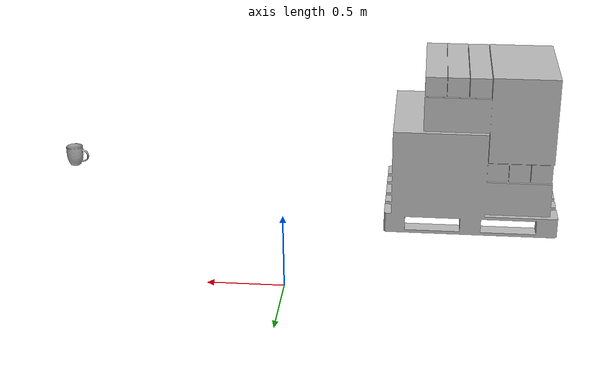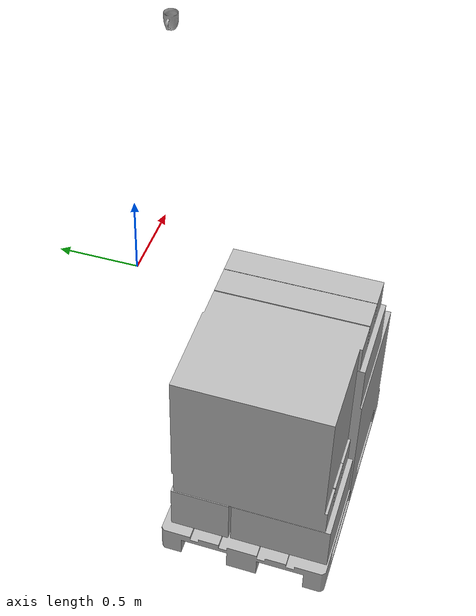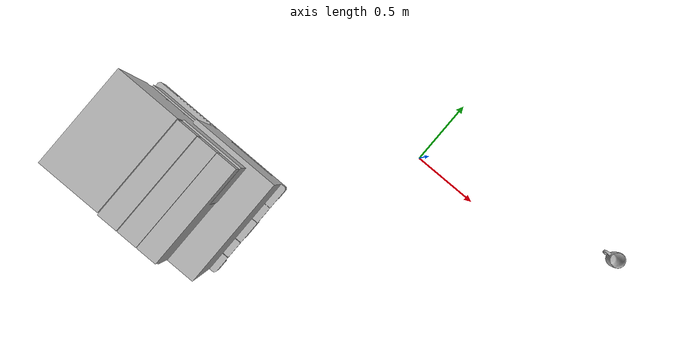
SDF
<?xml version="1.0" ?>
<sdf version="1.7">
  <world name="cell_world">
    <!-- Luz direccional tipo "sol" (sustituye a model://sun) -->
    <light name="sun" type="directional">
      <cast_shadows>true</cast_shadows>
      <pose>0 0 10 0 0 0</pose>
      <diffuse>1 1 1 1</diffuse>
      <specular>0.2 0.2 0.2 1</specular>
      <attenuation>
        <range>100</range>
        <constant>0.9</constant>
        <linear>0.01</linear>
        <quadratic>0.001</quadratic>
      </attenuation>
      <direction>-0.5 0.5 -1</direction>
    </light>

    <gravity>0 0 -9.81</gravity>

    <!-- Pallet (malla local package://) -->
    <model name="euro_pallet_stack">
      <static>true</static>
      <pose>-1.2 -1.2 0 0 0 0</pose>
      <link name="link">
        <visual name="vis">
          <geometry>
            <mesh>
              <uri>file:///root/ros2_ws/install/robot_description/share/robot_description/meshes/cc_by/euro_pallet_w_stacked_boxes/meshes/euro_pallet_w_stacked_boxes.dae</uri>
              <scale>1 1 1</scale>
            </mesh>
          </geometry>
        </visual>
        <collision name="col">
          <geometry><box><size>1.2 0.8 1.2</size></box></geometry>
          <pose>0 0 0.6 0 0 0</pose>
        </collision>
      </link>
    </model>

    <!-- Taza -->
    <model name="mug">
      <static>true</static>
      <pose>1.20 0.20 0.90 0 0 0</pose>
      <link name="link">
        <visual name="vis">
          <geometry>
            <mesh>
              <uri>file:///root/ros2_ws/install/robot_description/share/robot_description/meshes/cc_by/Threshold_Porcelain_Coffee_Mug_All_Over_Bead_White/meshes/model.obj</uri>
              <scale>1 1 1</scale>
            </mesh>
          </geometry>
        </visual>
        <collision name="col">
          <geometry><cylinder><radius>0.05</radius><length>0.30</length></cylinder></geometry>
        </collision>
      </link>
    </model>

    <!-- El robot UR se crea desde /robot_description con ros_gz_sim create -->
  </world>
</sdf>
